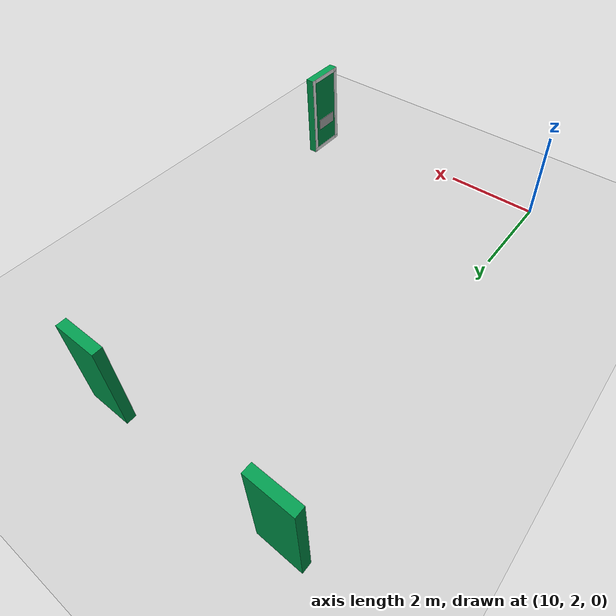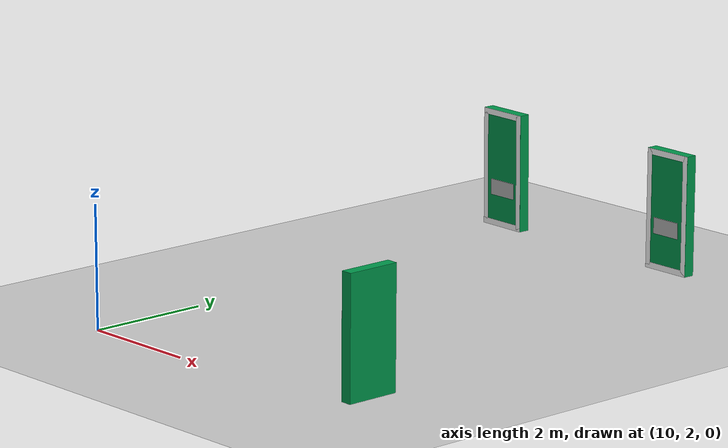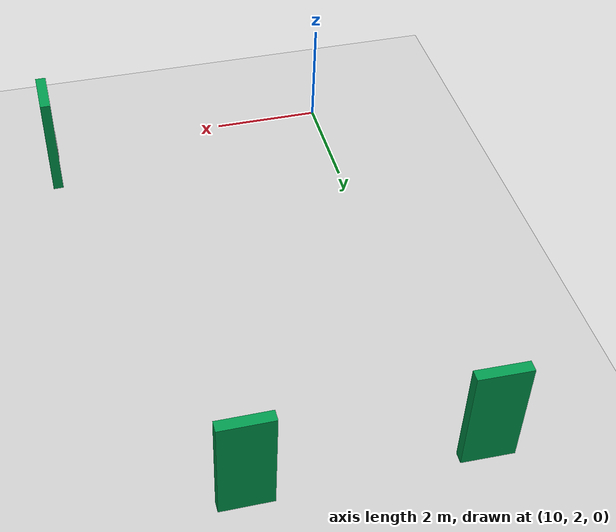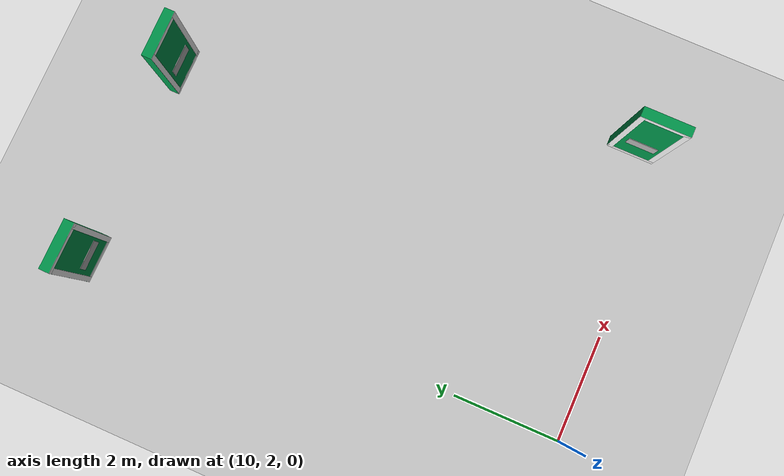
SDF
<sdf version="1.7">
 <world name="default">
  <model name="ground_plane">
   <static>1</static>
   <link name="link">
    <collision name="collision">
     <geometry><plane><normal>0 0 1</normal><size>100 100</size></plane></geometry>
     <surface><friction><ode><mu>100</mu><mu2>50</mu2></ode></friction></surface>
    </collision>
    <visual name="visual">
     <cast_shadows>0</cast_shadows>
     <geometry><plane><normal>0 0 1</normal><size>100 100</size></plane></geometry>
     <material>
      <script><uri>file://media/materials/scripts/gazebo.material</uri><name>Gazebo/Grey</name></script>
     </material>
    </visual>
   </link>
  </model>
  <model name="fire_exit_green_0">
   <link name="link_1">
    <pose>0 0 0.993 0 -0 0</pose>
    <visual name="visual">
     <geometry><box><size>0.891572 0.186765 1.98613</size></box></geometry>
     <material>
      <ambient>0 0.6 0.3 1</ambient>
      <diffuse>0 0.6 0.3 1</diffuse>
      <specular>0.2 0.2 0.2 1</specular>
     </material>
    </visual>
    <visual name="border_left">
     <pose>0.395 0.094 0 0 -0 0</pose>
     <geometry><box><size>0.1 0.002 1.986</size></box></geometry>
     <material><ambient>1 1 1 1</ambient><diffuse>1 1 1 1</diffuse></material>
    </visual>
    <visual name="border_right">
     <pose>-0.395 0.094 0 0 -0 0</pose>
     <geometry><box><size>0.1 0.002 1.986</size></box></geometry>
     <material><ambient>1 1 1 1</ambient><diffuse>1 1 1 1</diffuse></material>
    </visual>
    <visual name="border_top">
     <pose>0 0.094 0.943 0 -0 0</pose>
     <geometry><box><size>0.891 0.002 0.1</size></box></geometry>
     <material><ambient>1 1 1 1</ambient><diffuse>1 1 1 1</diffuse></material>
    </visual>
    <visual name="border_bottom">
     <pose>0 0.094 -0.943 0 -0 0</pose>
     <geometry><box><size>0.891 0.002 0.1</size></box></geometry>
     <material><ambient>1 1 1 1</ambient><diffuse>1 1 1 1</diffuse></material>
    </visual>
    <collision name="collision"><geometry><box><size>0.891572 0.186765 1.98613</size></box></geometry></collision>
    <inertial>
     <inertia><ixx>1</ixx><ixy>0</ixy><ixz>0</ixz><iyy>1</iyy><iyz>0</iyz><izz>1</izz></inertia>
     <mass>1</mass>
    </inertial>
   </link>
   <static>0</static>
   <pose>9.66608 10.9491 0.005061 0 -3e-06 3.12275</pose>
  </model>
  <model name="fire_exit_green_1">
   <link name="link_1">
    <pose>0 0 0.993 0 -0 0</pose>
    <visual name="visual">
     <geometry><box><size>0.891572 0.186765 1.98613</size></box></geometry>
     <material>
      <ambient>0 0.6 0.3 1</ambient>
      <diffuse>0 0.6 0.3 1</diffuse>
      <specular>0.2 0.2 0.2 1</specular>
     </material>
    </visual>
    <visual name="border_left">
     <pose>0.395 0.094 0 0 -0 0</pose>
     <geometry><box><size>0.1 0.002 1.986</size></box></geometry>
     <material><ambient>1 1 1 1</ambient><diffuse>1 1 1 1</diffuse></material>
    </visual>
    <visual name="border_right">
     <pose>-0.395 0.094 0 0 -0 0</pose>
     <geometry><box><size>0.1 0.002 1.986</size></box></geometry>
     <material><ambient>1 1 1 1</ambient><diffuse>1 1 1 1</diffuse></material>
    </visual>
    <visual name="border_top">
     <pose>0 0.094 0.943 0 -0 0</pose>
     <geometry><box><size>0.891 0.002 0.1</size></box></geometry>
     <material><ambient>1 1 1 1</ambient><diffuse>1 1 1 1</diffuse></material>
    </visual>
    <visual name="border_bottom">
     <pose>0 0.094 -0.943 0 -0 0</pose>
     <geometry><box><size>0.891 0.002 0.1</size></box></geometry>
     <material><ambient>1 1 1 1</ambient><diffuse>1 1 1 1</diffuse></material>
    </visual>
    <collision name="collision"><geometry><box><size>0.891572 0.186765 1.98613</size></box></geometry></collision>
    <inertial>
     <inertia><ixx>1</ixx><ixy>0</ixy><ixz>0</ixz><iyy>1</iyy><iyz>0</iyz><izz>1</izz></inertia>
     <mass>1</mass>
    </inertial>
   </link>
   <static>0</static>
   <pose>13.4937 10.9515 0.006037 0.010406 0 3.13679</pose>
  </model>
  <model name="fire_exit_green_2">
   <link name="link_1">
    <pose>0 0 0.993 0 -0 0</pose>
    <visual name="visual">
     <geometry><box><size>0.891572 0.186765 1.98613</size></box></geometry>
     <material>
      <ambient>0 0.6 0.3 1</ambient>
      <diffuse>0 0.6 0.3 1</diffuse>
      <specular>0.2 0.2 0.2 1</specular>
     </material>
    </visual>
    <visual name="border_left">
     <pose>0.395 0.094 0 0 -0 0</pose>
     <geometry><box><size>0.1 0.002 1.986</size></box></geometry>
     <material><ambient>1 1 1 1</ambient><diffuse>1 1 1 1</diffuse></material>
    </visual>
    <visual name="border_right">
     <pose>-0.395 0.094 0 0 -0 0</pose>
     <geometry><box><size>0.1 0.002 1.986</size></box></geometry>
     <material><ambient>1 1 1 1</ambient><diffuse>1 1 1 1</diffuse></material>
    </visual>
    <visual name="border_top">
     <pose>0 0.094 0.943 0 -0 0</pose>
     <geometry><box><size>0.891 0.002 0.1</size></box></geometry>
     <material><ambient>1 1 1 1</ambient><diffuse>1 1 1 1</diffuse></material>
    </visual>
    <visual name="border_bottom">
     <pose>0 0.094 -0.943 0 -0 0</pose>
     <geometry><box><size>0.891 0.002 0.1</size></box></geometry>
     <material><ambient>1 1 1 1</ambient><diffuse>1 1 1 1</diffuse></material>
    </visual>
    <collision name="collision"><geometry><box><size>0.891572 0.186765 1.98613</size></box></geometry></collision>
    <inertial>
     <inertia><ixx>1</ixx><ixy>0</ixy><ixz>0</ixz><iyy>1</iyy><iyz>0</iyz><izz>1</izz></inertia>
     <mass>1</mass>
    </inertial>
   </link>
   <static>0</static>
   <pose>15.4335 2.74322 0.006131 0.011418 -0 1.5708</pose>
  </model>
  <model name="poster_1">
   <static>1</static>
   <link name="link_0">
    <visual name="visual">
     <geometry><box><size>0.01 0.537989 0.266526</size></box></geometry>
     <material>
      <script>
       <uri>model://poster/materials/scripts</uri>
       <uri>model://poster/materials/textures</uri>
       <name>FireExit/Label</name>
      </script>
     </material>
    </visual>
    <collision name="collision"><geometry><box><size>0.01 0.537989 0.266526</size></box></geometry></collision>
   </link>
   <pose>15.3417 2.7317 0.713547 0 -0 0</pose>
  </model>
  <model name="poster_2">
   <static>1</static>
   <link name="link_0">
    <visual name="visual">
     <geometry><box><size>0.01 0.537989 0.266526</size></box></geometry>
     <material>
      <script>
       <uri>model://poster/materials/scripts</uri>
       <uri>model://poster/materials/textures</uri>
       <name>FireExit/Label</name>
      </script>
     </material>
    </visual>
    <collision name="collision"><geometry><box><size>0.01 0.537989 0.266526</size></box></geometry></collision>
   </link>
   <pose>13.4898 10.8593 0.736533 0 -0 1.56599</pose>
  </model>
  <model name="poster_3">
   <static>1</static>
   <link name="link_0">
    <visual name="visual">
     <geometry><box><size>0.01 0.537989 0.266526</size></box></geometry>
     <material>
      <script>
       <uri>model://poster/materials/scripts</uri>
       <uri>model://poster/materials/textures</uri>
       <name>FireExit/Label</name>
      </script>
     </material>
    </visual>
    <collision name="collision"><geometry><box><size>0.01 0.537989 0.266526</size></box></geometry></collision>
   </link>
   <pose>9.68327 10.8475 0.666749 0 -0 1.56261</pose>
  </model>
 </world>
</sdf>
